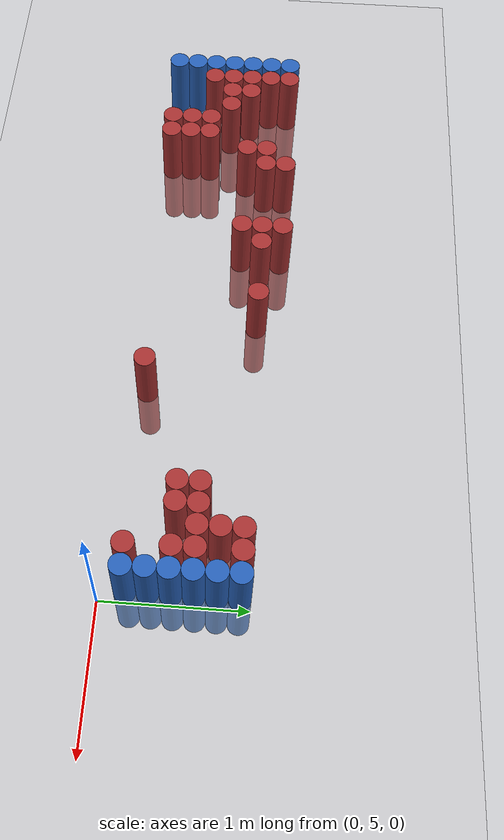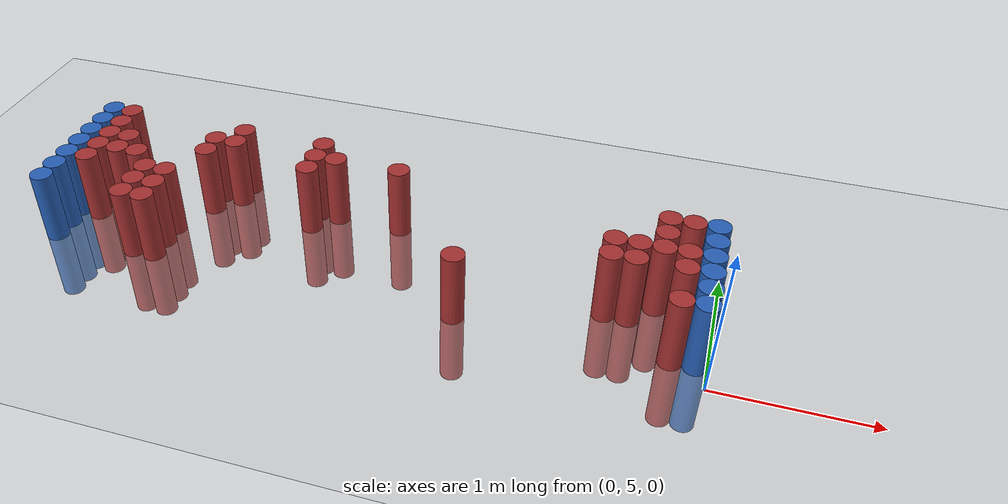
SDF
<sdf version="1.6">
 <world name="default">
  <model name="ground_plane">
   <static>1</static>
   <link name="link">
    <collision name="collision">
     <geometry><plane><normal>0 0 1</normal><size>100 100</size></plane></geometry>
     <surface><friction><ode><mu>100</mu><mu2>50</mu2></ode></friction></surface>
    </collision>
    <visual name="visual">
     <cast_shadows>0</cast_shadows>
     <geometry><plane><normal>0 0 1</normal><size>100 100</size></plane></geometry>
     <material>
      <script><uri>file://media/materials/scripts/gazebo.material</uri><name>Gazebo/Grey</name></script>
     </material>
    </visual>
   </link>
  </model>
  <model name="unit_cylinder_96">
   <static>1</static>
   <pose>-4.425000 5.175000 0.000000 0.000000 0.000000 0.000000</pose>
   <link name="link">
    <inertial>
     <mass>1</mass>
     <inertia><ixx>0.145833</ixx><ixy>0</ixy><ixz>0</ixz><iyy>0.145833</iyy><iyz>0</iyz><izz>0.125</izz></inertia>
    </inertial>
    <collision name="collision">
     <geometry><cylinder><radius>0.075000</radius><length>1</length></cylinder></geometry>
    </collision>
    <visual name="visual">
     <geometry><cylinder><radius>0.075000</radius><length>1</length></cylinder></geometry>
     <material>
      <ambient>0.152000 0.379000 0.720000 1</ambient>
      <diffuse>0.152000 0.379000 0.720000 1</diffuse>
     </material>
     <material>
      <script><name>Gazebo/Grey</name><uri>file://media/materials/scripts/gazebo.material</uri></script>
     </material>
    </visual>
   </link>
  </model>
  <model name="unit_cylinder_97">
   <static>1</static>
   <pose>-4.425000 5.325000 0.000000 0.000000 0.000000 0.000000</pose>
   <link name="link">
    <inertial>
     <mass>1</mass>
     <inertia><ixx>0.145833</ixx><ixy>0</ixy><ixz>0</ixz><iyy>0.145833</iyy><iyz>0</iyz><izz>0.125</izz></inertia>
    </inertial>
    <collision name="collision">
     <geometry><cylinder><radius>0.075000</radius><length>1</length></cylinder></geometry>
    </collision>
    <visual name="visual">
     <geometry><cylinder><radius>0.075000</radius><length>1</length></cylinder></geometry>
     <material>
      <ambient>0.152000 0.379000 0.720000 1</ambient>
      <diffuse>0.152000 0.379000 0.720000 1</diffuse>
     </material>
     <material>
      <script><name>Gazebo/Grey</name><uri>file://media/materials/scripts/gazebo.material</uri></script>
     </material>
    </visual>
   </link>
  </model>
  <model name="unit_cylinder_98">
   <static>1</static>
   <pose>-4.425000 5.475000 0.000000 0.000000 0.000000 0.000000</pose>
   <link name="link">
    <inertial>
     <mass>1</mass>
     <inertia><ixx>0.145833</ixx><ixy>0</ixy><ixz>0</ixz><iyy>0.145833</iyy><iyz>0</iyz><izz>0.125</izz></inertia>
    </inertial>
    <collision name="collision">
     <geometry><cylinder><radius>0.075000</radius><length>1</length></cylinder></geometry>
    </collision>
    <visual name="visual">
     <geometry><cylinder><radius>0.075000</radius><length>1</length></cylinder></geometry>
     <material>
      <ambient>0.152000 0.379000 0.720000 1</ambient>
      <diffuse>0.152000 0.379000 0.720000 1</diffuse>
     </material>
     <material>
      <script><name>Gazebo/Grey</name><uri>file://media/materials/scripts/gazebo.material</uri></script>
     </material>
    </visual>
   </link>
  </model>
  <model name="unit_cylinder_99">
   <static>1</static>
   <pose>-4.425000 5.625000 0.000000 0.000000 0.000000 0.000000</pose>
   <link name="link">
    <inertial>
     <mass>1</mass>
     <inertia><ixx>0.145833</ixx><ixy>0</ixy><ixz>0</ixz><iyy>0.145833</iyy><iyz>0</iyz><izz>0.125</izz></inertia>
    </inertial>
    <collision name="collision">
     <geometry><cylinder><radius>0.075000</radius><length>1</length></cylinder></geometry>
    </collision>
    <visual name="visual">
     <geometry><cylinder><radius>0.075000</radius><length>1</length></cylinder></geometry>
     <material>
      <ambient>0.152000 0.379000 0.720000 1</ambient>
      <diffuse>0.152000 0.379000 0.720000 1</diffuse>
     </material>
     <material>
      <script><name>Gazebo/Grey</name><uri>file://media/materials/scripts/gazebo.material</uri></script>
     </material>
    </visual>
   </link>
  </model>
  <model name="unit_cylinder_100">
   <static>1</static>
   <pose>-4.425000 5.775000 0.000000 0.000000 0.000000 0.000000</pose>
   <link name="link">
    <inertial>
     <mass>1</mass>
     <inertia><ixx>0.145833</ixx><ixy>0</ixy><ixz>0</ixz><iyy>0.145833</iyy><iyz>0</iyz><izz>0.125</izz></inertia>
    </inertial>
    <collision name="collision">
     <geometry><cylinder><radius>0.075000</radius><length>1</length></cylinder></geometry>
    </collision>
    <visual name="visual">
     <geometry><cylinder><radius>0.075000</radius><length>1</length></cylinder></geometry>
     <material>
      <ambient>0.152000 0.379000 0.720000 1</ambient>
      <diffuse>0.152000 0.379000 0.720000 1</diffuse>
     </material>
     <material>
      <script><name>Gazebo/Grey</name><uri>file://media/materials/scripts/gazebo.material</uri></script>
     </material>
    </visual>
   </link>
  </model>
  <model name="unit_cylinder_101">
   <static>1</static>
   <pose>-4.425000 5.925000 0.000000 0.000000 0.000000 0.000000</pose>
   <link name="link">
    <inertial>
     <mass>1</mass>
     <inertia><ixx>0.145833</ixx><ixy>0</ixy><ixz>0</ixz><iyy>0.145833</iyy><iyz>0</iyz><izz>0.125</izz></inertia>
    </inertial>
    <collision name="collision">
     <geometry><cylinder><radius>0.075000</radius><length>1</length></cylinder></geometry>
    </collision>
    <visual name="visual">
     <geometry><cylinder><radius>0.075000</radius><length>1</length></cylinder></geometry>
     <material>
      <ambient>0.152000 0.379000 0.720000 1</ambient>
      <diffuse>0.152000 0.379000 0.720000 1</diffuse>
     </material>
     <material>
      <script><name>Gazebo/Grey</name><uri>file://media/materials/scripts/gazebo.material</uri></script>
     </material>
    </visual>
   </link>
  </model>
  <model name="unit_cylinder_102">
   <static>1</static>
   <pose>-4.425000 6.075000 0.000000 0.000000 0.000000 0.000000</pose>
   <link name="link">
    <inertial>
     <mass>1</mass>
     <inertia><ixx>0.145833</ixx><ixy>0</ixy><ixz>0</ixz><iyy>0.145833</iyy><iyz>0</iyz><izz>0.125</izz></inertia>
    </inertial>
    <collision name="collision">
     <geometry><cylinder><radius>0.075000</radius><length>1</length></cylinder></geometry>
    </collision>
    <visual name="visual">
     <geometry><cylinder><radius>0.075000</radius><length>1</length></cylinder></geometry>
     <material>
      <ambient>0.152000 0.379000 0.720000 1</ambient>
      <diffuse>0.152000 0.379000 0.720000 1</diffuse>
     </material>
     <material>
      <script><name>Gazebo/Grey</name><uri>file://media/materials/scripts/gazebo.material</uri></script>
     </material>
    </visual>
   </link>
  </model>
  <model name="unit_cylinder_126">
   <static>1</static>
   <pose>-4.275000 5.475000 0.000000 0.000000 0.000000 0.000000</pose>
   <link name="link">
    <inertial>
     <mass>1</mass>
     <inertia><ixx>0.145833</ixx><ixy>0</ixy><ixz>0</ixz><iyy>0.145833</iyy><iyz>0</iyz><izz>0.125</izz></inertia>
    </inertial>
    <collision name="collision">
     <geometry><cylinder><radius>0.075000</radius><length>1</length></cylinder></geometry>
    </collision>
    <visual name="visual">
     <geometry><cylinder><radius>0.075000</radius><length>1</length></cylinder></geometry>
     <material>
      <ambient>0.648000 0.192000 0.192000 1</ambient>
      <diffuse>0.648000 0.192000 0.192000 1</diffuse>
     </material>
     <material>
      <script><name>Gazebo/Grey</name><uri>file://media/materials/scripts/gazebo.material</uri></script>
     </material>
    </visual>
   </link>
  </model>
  <model name="unit_cylinder_127">
   <static>1</static>
   <pose>-4.275000 5.625000 0.000000 0.000000 0.000000 0.000000</pose>
   <link name="link">
    <inertial>
     <mass>1</mass>
     <inertia><ixx>0.145833</ixx><ixy>0</ixy><ixz>0</ixz><iyy>0.145833</iyy><iyz>0</iyz><izz>0.125</izz></inertia>
    </inertial>
    <collision name="collision">
     <geometry><cylinder><radius>0.075000</radius><length>1</length></cylinder></geometry>
    </collision>
    <visual name="visual">
     <geometry><cylinder><radius>0.075000</radius><length>1</length></cylinder></geometry>
     <material>
      <ambient>0.648000 0.192000 0.192000 1</ambient>
      <diffuse>0.648000 0.192000 0.192000 1</diffuse>
     </material>
     <material>
      <script><name>Gazebo/Grey</name><uri>file://media/materials/scripts/gazebo.material</uri></script>
     </material>
    </visual>
   </link>
  </model>
  <model name="unit_cylinder_128">
   <static>1</static>
   <pose>-4.275000 5.775000 0.000000 0.000000 0.000000 0.000000</pose>
   <link name="link">
    <inertial>
     <mass>1</mass>
     <inertia><ixx>0.145833</ixx><ixy>0</ixy><ixz>0</ixz><iyy>0.145833</iyy><iyz>0</iyz><izz>0.125</izz></inertia>
    </inertial>
    <collision name="collision">
     <geometry><cylinder><radius>0.075000</radius><length>1</length></cylinder></geometry>
    </collision>
    <visual name="visual">
     <geometry><cylinder><radius>0.075000</radius><length>1</length></cylinder></geometry>
     <material>
      <ambient>0.648000 0.192000 0.192000 1</ambient>
      <diffuse>0.648000 0.192000 0.192000 1</diffuse>
     </material>
     <material>
      <script><name>Gazebo/Grey</name><uri>file://media/materials/scripts/gazebo.material</uri></script>
     </material>
    </visual>
   </link>
  </model>
  <model name="unit_cylinder_129">
   <static>1</static>
   <pose>-4.275000 5.925000 0.000000 0.000000 0.000000 0.000000</pose>
   <link name="link">
    <inertial>
     <mass>1</mass>
     <inertia><ixx>0.145833</ixx><ixy>0</ixy><ixz>0</ixz><iyy>0.145833</iyy><iyz>0</iyz><izz>0.125</izz></inertia>
    </inertial>
    <collision name="collision">
     <geometry><cylinder><radius>0.075000</radius><length>1</length></cylinder></geometry>
    </collision>
    <visual name="visual">
     <geometry><cylinder><radius>0.075000</radius><length>1</length></cylinder></geometry>
     <material>
      <ambient>0.648000 0.192000 0.192000 1</ambient>
      <diffuse>0.648000 0.192000 0.192000 1</diffuse>
     </material>
     <material>
      <script><name>Gazebo/Grey</name><uri>file://media/materials/scripts/gazebo.material</uri></script>
     </material>
    </visual>
   </link>
  </model>
  <model name="unit_cylinder_130">
   <static>1</static>
   <pose>-4.275000 6.075000 0.000000 0.000000 0.000000 0.000000</pose>
   <link name="link">
    <inertial>
     <mass>1</mass>
     <inertia><ixx>0.145833</ixx><ixy>0</ixy><ixz>0</ixz><iyy>0.145833</iyy><iyz>0</iyz><izz>0.125</izz></inertia>
    </inertial>
    <collision name="collision">
     <geometry><cylinder><radius>0.075000</radius><length>1</length></cylinder></geometry>
    </collision>
    <visual name="visual">
     <geometry><cylinder><radius>0.075000</radius><length>1</length></cylinder></geometry>
     <material>
      <ambient>0.648000 0.192000 0.192000 1</ambient>
      <diffuse>0.648000 0.192000 0.192000 1</diffuse>
     </material>
     <material>
      <script><name>Gazebo/Grey</name><uri>file://media/materials/scripts/gazebo.material</uri></script>
     </material>
    </visual>
   </link>
  </model>
  <model name="unit_cylinder_146">
   <static>1</static>
   <pose>-4.125000 5.625000 0.000000 0.000000 0.000000 0.000000</pose>
   <link name="link">
    <inertial>
     <mass>1</mass>
     <inertia><ixx>0.145833</ixx><ixy>0</ixy><ixz>0</ixz><iyy>0.145833</iyy><iyz>0</iyz><izz>0.125</izz></inertia>
    </inertial>
    <collision name="collision">
     <geometry><cylinder><radius>0.075000</radius><length>1</length></cylinder></geometry>
    </collision>
    <visual name="visual">
     <geometry><cylinder><radius>0.075000</radius><length>1</length></cylinder></geometry>
     <material>
      <ambient>0.648000 0.192000 0.192000 1</ambient>
      <diffuse>0.648000 0.192000 0.192000 1</diffuse>
     </material>
     <material>
      <script><name>Gazebo/Grey</name><uri>file://media/materials/scripts/gazebo.material</uri></script>
     </material>
    </visual>
   </link>
  </model>
  <model name="unit_cylinder_147">
   <static>1</static>
   <pose>-4.125000 5.775000 0.000000 0.000000 0.000000 0.000000</pose>
   <link name="link">
    <inertial>
     <mass>1</mass>
     <inertia><ixx>0.145833</ixx><ixy>0</ixy><ixz>0</ixz><iyy>0.145833</iyy><iyz>0</iyz><izz>0.125</izz></inertia>
    </inertial>
    <collision name="collision">
     <geometry><cylinder><radius>0.075000</radius><length>1</length></cylinder></geometry>
    </collision>
    <visual name="visual">
     <geometry><cylinder><radius>0.075000</radius><length>1</length></cylinder></geometry>
     <material>
      <ambient>0.648000 0.192000 0.192000 1</ambient>
      <diffuse>0.648000 0.192000 0.192000 1</diffuse>
     </material>
     <material>
      <script><name>Gazebo/Grey</name><uri>file://media/materials/scripts/gazebo.material</uri></script>
     </material>
    </visual>
   </link>
  </model>
  <model name="unit_cylinder_154">
   <static>1</static>
   <pose>-3.975000 5.625000 0.000000 0.000000 0.000000 0.000000</pose>
   <link name="link">
    <inertial>
     <mass>1</mass>
     <inertia><ixx>0.145833</ixx><ixy>0</ixy><ixz>0</ixz><iyy>0.145833</iyy><iyz>0</iyz><izz>0.125</izz></inertia>
    </inertial>
    <collision name="collision">
     <geometry><cylinder><radius>0.075000</radius><length>1</length></cylinder></geometry>
    </collision>
    <visual name="visual">
     <geometry><cylinder><radius>0.075000</radius><length>1</length></cylinder></geometry>
     <material>
      <ambient>0.648000 0.192000 0.192000 1</ambient>
      <diffuse>0.648000 0.192000 0.192000 1</diffuse>
     </material>
     <material>
      <script><name>Gazebo/Grey</name><uri>file://media/materials/scripts/gazebo.material</uri></script>
     </material>
    </visual>
   </link>
  </model>
  <model name="unit_cylinder_155">
   <static>1</static>
   <pose>-3.825000 5.175000 0.000000 0.000000 0.000000 0.000000</pose>
   <link name="link">
    <inertial>
     <mass>1</mass>
     <inertia><ixx>0.145833</ixx><ixy>0</ixy><ixz>0</ixz><iyy>0.145833</iyy><iyz>0</iyz><izz>0.125</izz></inertia>
    </inertial>
    <collision name="collision">
     <geometry><cylinder><radius>0.075000</radius><length>1</length></cylinder></geometry>
    </collision>
    <visual name="visual">
     <geometry><cylinder><radius>0.075000</radius><length>1</length></cylinder></geometry>
     <material>
      <ambient>0.648000 0.192000 0.192000 1</ambient>
      <diffuse>0.648000 0.192000 0.192000 1</diffuse>
     </material>
     <material>
      <script><name>Gazebo/Grey</name><uri>file://media/materials/scripts/gazebo.material</uri></script>
     </material>
    </visual>
   </link>
  </model>
  <model name="unit_cylinder_156">
   <static>1</static>
   <pose>-3.825000 5.325000 0.000000 0.000000 0.000000 0.000000</pose>
   <link name="link">
    <inertial>
     <mass>1</mass>
     <inertia><ixx>0.145833</ixx><ixy>0</ixy><ixz>0</ixz><iyy>0.145833</iyy><iyz>0</iyz><izz>0.125</izz></inertia>
    </inertial>
    <collision name="collision">
     <geometry><cylinder><radius>0.075000</radius><length>1</length></cylinder></geometry>
    </collision>
    <visual name="visual">
     <geometry><cylinder><radius>0.075000</radius><length>1</length></cylinder></geometry>
     <material>
      <ambient>0.648000 0.192000 0.192000 1</ambient>
      <diffuse>0.648000 0.192000 0.192000 1</diffuse>
     </material>
     <material>
      <script><name>Gazebo/Grey</name><uri>file://media/materials/scripts/gazebo.material</uri></script>
     </material>
    </visual>
   </link>
  </model>
  <model name="unit_cylinder_157">
   <static>1</static>
   <pose>-3.825000 5.475000 0.000000 0.000000 0.000000 0.000000</pose>
   <link name="link">
    <inertial>
     <mass>1</mass>
     <inertia><ixx>0.145833</ixx><ixy>0</ixy><ixz>0</ixz><iyy>0.145833</iyy><iyz>0</iyz><izz>0.125</izz></inertia>
    </inertial>
    <collision name="collision">
     <geometry><cylinder><radius>0.075000</radius><length>1</length></cylinder></geometry>
    </collision>
    <visual name="visual">
     <geometry><cylinder><radius>0.075000</radius><length>1</length></cylinder></geometry>
     <material>
      <ambient>0.648000 0.192000 0.192000 1</ambient>
      <diffuse>0.648000 0.192000 0.192000 1</diffuse>
     </material>
     <material>
      <script><name>Gazebo/Grey</name><uri>file://media/materials/scripts/gazebo.material</uri></script>
     </material>
    </visual>
   </link>
  </model>
  <model name="unit_cylinder_158">
   <static>1</static>
   <pose>-3.675000 5.175000 0.000000 0.000000 0.000000 0.000000</pose>
   <link name="link">
    <inertial>
     <mass>1</mass>
     <inertia><ixx>0.145833</ixx><ixy>0</ixy><ixz>0</ixz><iyy>0.145833</iyy><iyz>0</iyz><izz>0.125</izz></inertia>
    </inertial>
    <collision name="collision">
     <geometry><cylinder><radius>0.075000</radius><length>1</length></cylinder></geometry>
    </collision>
    <visual name="visual">
     <geometry><cylinder><radius>0.075000</radius><length>1</length></cylinder></geometry>
     <material>
      <ambient>0.648000 0.192000 0.192000 1</ambient>
      <diffuse>0.648000 0.192000 0.192000 1</diffuse>
     </material>
     <material>
      <script><name>Gazebo/Grey</name><uri>file://media/materials/scripts/gazebo.material</uri></script>
     </material>
    </visual>
   </link>
  </model>
  <model name="unit_cylinder_159">
   <static>1</static>
   <pose>-3.675000 5.325000 0.000000 0.000000 0.000000 0.000000</pose>
   <link name="link">
    <inertial>
     <mass>1</mass>
     <inertia><ixx>0.145833</ixx><ixy>0</ixy><ixz>0</ixz><iyy>0.145833</iyy><iyz>0</iyz><izz>0.125</izz></inertia>
    </inertial>
    <collision name="collision">
     <geometry><cylinder><radius>0.075000</radius><length>1</length></cylinder></geometry>
    </collision>
    <visual name="visual">
     <geometry><cylinder><radius>0.075000</radius><length>1</length></cylinder></geometry>
     <material>
      <ambient>0.648000 0.192000 0.192000 1</ambient>
      <diffuse>0.648000 0.192000 0.192000 1</diffuse>
     </material>
     <material>
      <script><name>Gazebo/Grey</name><uri>file://media/materials/scripts/gazebo.material</uri></script>
     </material>
    </visual>
   </link>
  </model>
  <model name="unit_cylinder_160">
   <static>1</static>
   <pose>-3.675000 5.475000 0.000000 0.000000 0.000000 0.000000</pose>
   <link name="link">
    <inertial>
     <mass>1</mass>
     <inertia><ixx>0.145833</ixx><ixy>0</ixy><ixz>0</ixz><iyy>0.145833</iyy><iyz>0</iyz><izz>0.125</izz></inertia>
    </inertial>
    <collision name="collision">
     <geometry><cylinder><radius>0.075000</radius><length>1</length></cylinder></geometry>
    </collision>
    <visual name="visual">
     <geometry><cylinder><radius>0.075000</radius><length>1</length></cylinder></geometry>
     <material>
      <ambient>0.648000 0.192000 0.192000 1</ambient>
      <diffuse>0.648000 0.192000 0.192000 1</diffuse>
     </material>
     <material>
      <script><name>Gazebo/Grey</name><uri>file://media/materials/scripts/gazebo.material</uri></script>
     </material>
    </visual>
   </link>
  </model>
  <model name="unit_cylinder_161">
   <static>1</static>
   <pose>-3.525000 5.775000 0.000000 0.000000 0.000000 0.000000</pose>
   <link name="link">
    <inertial>
     <mass>1</mass>
     <inertia><ixx>0.145833</ixx><ixy>0</ixy><ixz>0</ixz><iyy>0.145833</iyy><iyz>0</iyz><izz>0.125</izz></inertia>
    </inertial>
    <collision name="collision">
     <geometry><cylinder><radius>0.075000</radius><length>1</length></cylinder></geometry>
    </collision>
    <visual name="visual">
     <geometry><cylinder><radius>0.075000</radius><length>1</length></cylinder></geometry>
     <material>
      <ambient>0.648000 0.192000 0.192000 1</ambient>
      <diffuse>0.648000 0.192000 0.192000 1</diffuse>
     </material>
     <material>
      <script><name>Gazebo/Grey</name><uri>file://media/materials/scripts/gazebo.material</uri></script>
     </material>
    </visual>
   </link>
  </model>
  <model name="unit_cylinder_162">
   <static>1</static>
   <pose>-3.525000 5.925000 0.000000 0.000000 0.000000 0.000000</pose>
   <link name="link">
    <inertial>
     <mass>1</mass>
     <inertia><ixx>0.145833</ixx><ixy>0</ixy><ixz>0</ixz><iyy>0.145833</iyy><iyz>0</iyz><izz>0.125</izz></inertia>
    </inertial>
    <collision name="collision">
     <geometry><cylinder><radius>0.075000</radius><length>1</length></cylinder></geometry>
    </collision>
    <visual name="visual">
     <geometry><cylinder><radius>0.075000</radius><length>1</length></cylinder></geometry>
     <material>
      <ambient>0.648000 0.192000 0.192000 1</ambient>
      <diffuse>0.648000 0.192000 0.192000 1</diffuse>
     </material>
     <material>
      <script><name>Gazebo/Grey</name><uri>file://media/materials/scripts/gazebo.material</uri></script>
     </material>
    </visual>
   </link>
  </model>
  <model name="unit_cylinder_163">
   <static>1</static>
   <pose>-3.375000 5.925000 0.000000 0.000000 0.000000 0.000000</pose>
   <link name="link">
    <inertial>
     <mass>1</mass>
     <inertia><ixx>0.145833</ixx><ixy>0</ixy><ixz>0</ixz><iyy>0.145833</iyy><iyz>0</iyz><izz>0.125</izz></inertia>
    </inertial>
    <collision name="collision">
     <geometry><cylinder><radius>0.075000</radius><length>1</length></cylinder></geometry>
    </collision>
    <visual name="visual">
     <geometry><cylinder><radius>0.075000</radius><length>1</length></cylinder></geometry>
     <material>
      <ambient>0.648000 0.192000 0.192000 1</ambient>
      <diffuse>0.648000 0.192000 0.192000 1</diffuse>
     </material>
     <material>
      <script><name>Gazebo/Grey</name><uri>file://media/materials/scripts/gazebo.material</uri></script>
     </material>
    </visual>
   </link>
  </model>
  <model name="unit_cylinder_164">
   <static>1</static>
   <pose>-3.375000 6.075000 0.000000 0.000000 0.000000 0.000000</pose>
   <link name="link">
    <inertial>
     <mass>1</mass>
     <inertia><ixx>0.145833</ixx><ixy>0</ixy><ixz>0</ixz><iyy>0.145833</iyy><iyz>0</iyz><izz>0.125</izz></inertia>
    </inertial>
    <collision name="collision">
     <geometry><cylinder><radius>0.075000</radius><length>1</length></cylinder></geometry>
    </collision>
    <visual name="visual">
     <geometry><cylinder><radius>0.075000</radius><length>1</length></cylinder></geometry>
     <material>
      <ambient>0.648000 0.192000 0.192000 1</ambient>
      <diffuse>0.648000 0.192000 0.192000 1</diffuse>
     </material>
     <material>
      <script><name>Gazebo/Grey</name><uri>file://media/materials/scripts/gazebo.material</uri></script>
     </material>
    </visual>
   </link>
  </model>
  <model name="unit_cylinder_170">
   <static>1</static>
   <pose>-2.775000 5.775000 0.000000 0.000000 0.000000 0.000000</pose>
   <link name="link">
    <inertial>
     <mass>1</mass>
     <inertia><ixx>0.145833</ixx><ixy>0</ixy><ixz>0</ixz><iyy>0.145833</iyy><iyz>0</iyz><izz>0.125</izz></inertia>
    </inertial>
    <collision name="collision">
     <geometry><cylinder><radius>0.075000</radius><length>1</length></cylinder></geometry>
    </collision>
    <visual name="visual">
     <geometry><cylinder><radius>0.075000</radius><length>1</length></cylinder></geometry>
     <material>
      <ambient>0.648000 0.192000 0.192000 1</ambient>
      <diffuse>0.648000 0.192000 0.192000 1</diffuse>
     </material>
     <material>
      <script><name>Gazebo/Grey</name><uri>file://media/materials/scripts/gazebo.material</uri></script>
     </material>
    </visual>
   </link>
  </model>
  <model name="unit_cylinder_171">
   <static>1</static>
   <pose>-2.775000 5.925000 0.000000 0.000000 0.000000 0.000000</pose>
   <link name="link">
    <inertial>
     <mass>1</mass>
     <inertia><ixx>0.145833</ixx><ixy>0</ixy><ixz>0</ixz><iyy>0.145833</iyy><iyz>0</iyz><izz>0.125</izz></inertia>
    </inertial>
    <collision name="collision">
     <geometry><cylinder><radius>0.075000</radius><length>1</length></cylinder></geometry>
    </collision>
    <visual name="visual">
     <geometry><cylinder><radius>0.075000</radius><length>1</length></cylinder></geometry>
     <material>
      <ambient>0.648000 0.192000 0.192000 1</ambient>
      <diffuse>0.648000 0.192000 0.192000 1</diffuse>
     </material>
     <material>
      <script><name>Gazebo/Grey</name><uri>file://media/materials/scripts/gazebo.material</uri></script>
     </material>
    </visual>
   </link>
  </model>
  <model name="unit_cylinder_172">
   <static>1</static>
   <pose>-2.775000 6.075000 0.000000 0.000000 0.000000 0.000000</pose>
   <link name="link">
    <inertial>
     <mass>1</mass>
     <inertia><ixx>0.145833</ixx><ixy>0</ixy><ixz>0</ixz><iyy>0.145833</iyy><iyz>0</iyz><izz>0.125</izz></inertia>
    </inertial>
    <collision name="collision">
     <geometry><cylinder><radius>0.075000</radius><length>1</length></cylinder></geometry>
    </collision>
    <visual name="visual">
     <geometry><cylinder><radius>0.075000</radius><length>1</length></cylinder></geometry>
     <material>
      <ambient>0.648000 0.192000 0.192000 1</ambient>
      <diffuse>0.648000 0.192000 0.192000 1</diffuse>
     </material>
     <material>
      <script><name>Gazebo/Grey</name><uri>file://media/materials/scripts/gazebo.material</uri></script>
     </material>
    </visual>
   </link>
  </model>
  <model name="unit_cylinder_173">
   <static>1</static>
   <pose>-2.625000 5.925000 0.000000 0.000000 0.000000 0.000000</pose>
   <link name="link">
    <inertial>
     <mass>1</mass>
     <inertia><ixx>0.145833</ixx><ixy>0</ixy><ixz>0</ixz><iyy>0.145833</iyy><iyz>0</iyz><izz>0.125</izz></inertia>
    </inertial>
    <collision name="collision">
     <geometry><cylinder><radius>0.075000</radius><length>1</length></cylinder></geometry>
    </collision>
    <visual name="visual">
     <geometry><cylinder><radius>0.075000</radius><length>1</length></cylinder></geometry>
     <material>
      <ambient>0.648000 0.192000 0.192000 1</ambient>
      <diffuse>0.648000 0.192000 0.192000 1</diffuse>
     </material>
     <material>
      <script><name>Gazebo/Grey</name><uri>file://media/materials/scripts/gazebo.material</uri></script>
     </material>
    </visual>
   </link>
  </model>
  <model name="unit_cylinder_182">
   <static>1</static>
   <pose>-2.175000 5.925000 0.000000 0.000000 0.000000 0.000000</pose>
   <link name="link">
    <inertial>
     <mass>1</mass>
     <inertia><ixx>0.145833</ixx><ixy>0</ixy><ixz>0</ixz><iyy>0.145833</iyy><iyz>0</iyz><izz>0.125</izz></inertia>
    </inertial>
    <collision name="collision">
     <geometry><cylinder><radius>0.075000</radius><length>1</length></cylinder></geometry>
    </collision>
    <visual name="visual">
     <geometry><cylinder><radius>0.075000</radius><length>1</length></cylinder></geometry>
     <material>
      <ambient>0.648000 0.192000 0.192000 1</ambient>
      <diffuse>0.648000 0.192000 0.192000 1</diffuse>
     </material>
     <material>
      <script><name>Gazebo/Grey</name><uri>file://media/materials/scripts/gazebo.material</uri></script>
     </material>
    </visual>
   </link>
  </model>
  <model name="unit_cylinder_199">
   <static>1</static>
   <pose>-1.575000 5.175000 0.000000 0.000000 0.000000 0.000000</pose>
   <link name="link">
    <inertial>
     <mass>1</mass>
     <inertia><ixx>0.145833</ixx><ixy>0</ixy><ixz>0</ixz><iyy>0.145833</iyy><iyz>0</iyz><izz>0.125</izz></inertia>
    </inertial>
    <collision name="collision">
     <geometry><cylinder><radius>0.075000</radius><length>1</length></cylinder></geometry>
    </collision>
    <visual name="visual">
     <geometry><cylinder><radius>0.075000</radius><length>1</length></cylinder></geometry>
     <material>
      <ambient>0.648000 0.192000 0.192000 1</ambient>
      <diffuse>0.648000 0.192000 0.192000 1</diffuse>
     </material>
     <material>
      <script><name>Gazebo/Grey</name><uri>file://media/materials/scripts/gazebo.material</uri></script>
     </material>
    </visual>
   </link>
  </model>
  <model name="unit_cylinder_221">
   <static>1</static>
   <pose>-0.675000 5.475000 0.000000 0.000000 0.000000 0.000000</pose>
   <link name="link">
    <inertial>
     <mass>1</mass>
     <inertia><ixx>0.145833</ixx><ixy>0</ixy><ixz>0</ixz><iyy>0.145833</iyy><iyz>0</iyz><izz>0.125</izz></inertia>
    </inertial>
    <collision name="collision">
     <geometry><cylinder><radius>0.075000</radius><length>1</length></cylinder></geometry>
    </collision>
    <visual name="visual">
     <geometry><cylinder><radius>0.075000</radius><length>1</length></cylinder></geometry>
     <material>
      <ambient>0.648000 0.192000 0.192000 1</ambient>
      <diffuse>0.648000 0.192000 0.192000 1</diffuse>
     </material>
     <material>
      <script><name>Gazebo/Grey</name><uri>file://media/materials/scripts/gazebo.material</uri></script>
     </material>
    </visual>
   </link>
  </model>
  <model name="unit_cylinder_222">
   <static>1</static>
   <pose>-0.675000 5.625000 0.000000 0.000000 0.000000 0.000000</pose>
   <link name="link">
    <inertial>
     <mass>1</mass>
     <inertia><ixx>0.145833</ixx><ixy>0</ixy><ixz>0</ixz><iyy>0.145833</iyy><iyz>0</iyz><izz>0.125</izz></inertia>
    </inertial>
    <collision name="collision">
     <geometry><cylinder><radius>0.075000</radius><length>1</length></cylinder></geometry>
    </collision>
    <visual name="visual">
     <geometry><cylinder><radius>0.075000</radius><length>1</length></cylinder></geometry>
     <material>
      <ambient>0.648000 0.192000 0.192000 1</ambient>
      <diffuse>0.648000 0.192000 0.192000 1</diffuse>
     </material>
     <material>
      <script><name>Gazebo/Grey</name><uri>file://media/materials/scripts/gazebo.material</uri></script>
     </material>
    </visual>
   </link>
  </model>
  <model name="unit_cylinder_227">
   <static>1</static>
   <pose>-0.525000 5.475000 0.000000 0.000000 0.000000 0.000000</pose>
   <link name="link">
    <inertial>
     <mass>1</mass>
     <inertia><ixx>0.145833</ixx><ixy>0</ixy><ixz>0</ixz><iyy>0.145833</iyy><iyz>0</iyz><izz>0.125</izz></inertia>
    </inertial>
    <collision name="collision">
     <geometry><cylinder><radius>0.075000</radius><length>1</length></cylinder></geometry>
    </collision>
    <visual name="visual">
     <geometry><cylinder><radius>0.075000</radius><length>1</length></cylinder></geometry>
     <material>
      <ambient>0.648000 0.192000 0.192000 1</ambient>
      <diffuse>0.648000 0.192000 0.192000 1</diffuse>
     </material>
     <material>
      <script><name>Gazebo/Grey</name><uri>file://media/materials/scripts/gazebo.material</uri></script>
     </material>
    </visual>
   </link>
  </model>
  <model name="unit_cylinder_228">
   <static>1</static>
   <pose>-0.525000 5.625000 0.000000 0.000000 0.000000 0.000000</pose>
   <link name="link">
    <inertial>
     <mass>1</mass>
     <inertia><ixx>0.145833</ixx><ixy>0</ixy><ixz>0</ixz><iyy>0.145833</iyy><iyz>0</iyz><izz>0.125</izz></inertia>
    </inertial>
    <collision name="collision">
     <geometry><cylinder><radius>0.075000</radius><length>1</length></cylinder></geometry>
    </collision>
    <visual name="visual">
     <geometry><cylinder><radius>0.075000</radius><length>1</length></cylinder></geometry>
     <material>
      <ambient>0.648000 0.192000 0.192000 1</ambient>
      <diffuse>0.648000 0.192000 0.192000 1</diffuse>
     </material>
     <material>
      <script><name>Gazebo/Grey</name><uri>file://media/materials/scripts/gazebo.material</uri></script>
     </material>
    </visual>
   </link>
  </model>
  <model name="unit_cylinder_234">
   <static>1</static>
   <pose>-0.375000 5.625000 0.000000 0.000000 0.000000 0.000000</pose>
   <link name="link">
    <inertial>
     <mass>1</mass>
     <inertia><ixx>0.145833</ixx><ixy>0</ixy><ixz>0</ixz><iyy>0.145833</iyy><iyz>0</iyz><izz>0.125</izz></inertia>
    </inertial>
    <collision name="collision">
     <geometry><cylinder><radius>0.075000</radius><length>1</length></cylinder></geometry>
    </collision>
    <visual name="visual">
     <geometry><cylinder><radius>0.075000</radius><length>1</length></cylinder></geometry>
     <material>
      <ambient>0.648000 0.192000 0.192000 1</ambient>
      <diffuse>0.648000 0.192000 0.192000 1</diffuse>
     </material>
     <material>
      <script><name>Gazebo/Grey</name><uri>file://media/materials/scripts/gazebo.material</uri></script>
     </material>
    </visual>
   </link>
  </model>
  <model name="unit_cylinder_235">
   <static>1</static>
   <pose>-0.375000 5.775000 0.000000 0.000000 0.000000 0.000000</pose>
   <link name="link">
    <inertial>
     <mass>1</mass>
     <inertia><ixx>0.145833</ixx><ixy>0</ixy><ixz>0</ixz><iyy>0.145833</iyy><iyz>0</iyz><izz>0.125</izz></inertia>
    </inertial>
    <collision name="collision">
     <geometry><cylinder><radius>0.075000</radius><length>1</length></cylinder></geometry>
    </collision>
    <visual name="visual">
     <geometry><cylinder><radius>0.075000</radius><length>1</length></cylinder></geometry>
     <material>
      <ambient>0.648000 0.192000 0.192000 1</ambient>
      <diffuse>0.648000 0.192000 0.192000 1</diffuse>
     </material>
     <material>
      <script><name>Gazebo/Grey</name><uri>file://media/materials/scripts/gazebo.material</uri></script>
     </material>
    </visual>
   </link>
  </model>
  <model name="unit_cylinder_236">
   <static>1</static>
   <pose>-0.375000 5.925000 0.000000 0.000000 0.000000 0.000000</pose>
   <link name="link">
    <inertial>
     <mass>1</mass>
     <inertia><ixx>0.145833</ixx><ixy>0</ixy><ixz>0</ixz><iyy>0.145833</iyy><iyz>0</iyz><izz>0.125</izz></inertia>
    </inertial>
    <collision name="collision">
     <geometry><cylinder><radius>0.075000</radius><length>1</length></cylinder></geometry>
    </collision>
    <visual name="visual">
     <geometry><cylinder><radius>0.075000</radius><length>1</length></cylinder></geometry>
     <material>
      <ambient>0.648000 0.192000 0.192000 1</ambient>
      <diffuse>0.648000 0.192000 0.192000 1</diffuse>
     </material>
     <material>
      <script><name>Gazebo/Grey</name><uri>file://media/materials/scripts/gazebo.material</uri></script>
     </material>
    </visual>
   </link>
  </model>
  <model name="unit_cylinder_243">
   <static>1</static>
   <pose>-0.225000 5.175000 0.000000 0.000000 0.000000 0.000000</pose>
   <link name="link">
    <inertial>
     <mass>1</mass>
     <inertia><ixx>0.145833</ixx><ixy>0</ixy><ixz>0</ixz><iyy>0.145833</iyy><iyz>0</iyz><izz>0.125</izz></inertia>
    </inertial>
    <collision name="collision">
     <geometry><cylinder><radius>0.075000</radius><length>1</length></cylinder></geometry>
    </collision>
    <visual name="visual">
     <geometry><cylinder><radius>0.075000</radius><length>1</length></cylinder></geometry>
     <material>
      <ambient>0.648000 0.192000 0.192000 1</ambient>
      <diffuse>0.648000 0.192000 0.192000 1</diffuse>
     </material>
     <material>
      <script><name>Gazebo/Grey</name><uri>file://media/materials/scripts/gazebo.material</uri></script>
     </material>
    </visual>
   </link>
  </model>
  <model name="unit_cylinder_244">
   <static>1</static>
   <pose>-0.225000 5.475000 0.000000 0.000000 0.000000 0.000000</pose>
   <link name="link">
    <inertial>
     <mass>1</mass>
     <inertia><ixx>0.145833</ixx><ixy>0</ixy><ixz>0</ixz><iyy>0.145833</iyy><iyz>0</iyz><izz>0.125</izz></inertia>
    </inertial>
    <collision name="collision">
     <geometry><cylinder><radius>0.075000</radius><length>1</length></cylinder></geometry>
    </collision>
    <visual name="visual">
     <geometry><cylinder><radius>0.075000</radius><length>1</length></cylinder></geometry>
     <material>
      <ambient>0.648000 0.192000 0.192000 1</ambient>
      <diffuse>0.648000 0.192000 0.192000 1</diffuse>
     </material>
     <material>
      <script><name>Gazebo/Grey</name><uri>file://media/materials/scripts/gazebo.material</uri></script>
     </material>
    </visual>
   </link>
  </model>
  <model name="unit_cylinder_245">
   <static>1</static>
   <pose>-0.225000 5.625000 0.000000 0.000000 0.000000 0.000000</pose>
   <link name="link">
    <inertial>
     <mass>1</mass>
     <inertia><ixx>0.145833</ixx><ixy>0</ixy><ixz>0</ixz><iyy>0.145833</iyy><iyz>0</iyz><izz>0.125</izz></inertia>
    </inertial>
    <collision name="collision">
     <geometry><cylinder><radius>0.075000</radius><length>1</length></cylinder></geometry>
    </collision>
    <visual name="visual">
     <geometry><cylinder><radius>0.075000</radius><length>1</length></cylinder></geometry>
     <material>
      <ambient>0.648000 0.192000 0.192000 1</ambient>
      <diffuse>0.648000 0.192000 0.192000 1</diffuse>
     </material>
     <material>
      <script><name>Gazebo/Grey</name><uri>file://media/materials/scripts/gazebo.material</uri></script>
     </material>
    </visual>
   </link>
  </model>
  <model name="unit_cylinder_246">
   <static>1</static>
   <pose>-0.225000 5.925000 0.000000 0.000000 0.000000 0.000000</pose>
   <link name="link">
    <inertial>
     <mass>1</mass>
     <inertia><ixx>0.145833</ixx><ixy>0</ixy><ixz>0</ixz><iyy>0.145833</iyy><iyz>0</iyz><izz>0.125</izz></inertia>
    </inertial>
    <collision name="collision">
     <geometry><cylinder><radius>0.075000</radius><length>1</length></cylinder></geometry>
    </collision>
    <visual name="visual">
     <geometry><cylinder><radius>0.075000</radius><length>1</length></cylinder></geometry>
     <material>
      <ambient>0.648000 0.192000 0.192000 1</ambient>
      <diffuse>0.648000 0.192000 0.192000 1</diffuse>
     </material>
     <material>
      <script><name>Gazebo/Grey</name><uri>file://media/materials/scripts/gazebo.material</uri></script>
     </material>
    </visual>
   </link>
  </model>
  <model name="unit_cylinder_259">
   <static>1</static>
   <pose>-0.075000 5.175000 0.000000 0.000000 0.000000 0.000000</pose>
   <link name="link">
    <inertial>
     <mass>1</mass>
     <inertia><ixx>0.145833</ixx><ixy>0</ixy><ixz>0</ixz><iyy>0.145833</iyy><iyz>0</iyz><izz>0.125</izz></inertia>
    </inertial>
    <collision name="collision">
     <geometry><cylinder><radius>0.075000</radius><length>1</length></cylinder></geometry>
    </collision>
    <visual name="visual">
     <geometry><cylinder><radius>0.075000</radius><length>1</length></cylinder></geometry>
     <material>
      <ambient>0.152000 0.379000 0.720000 1</ambient>
      <diffuse>0.152000 0.379000 0.720000 1</diffuse>
     </material>
     <material>
      <script><name>Gazebo/Grey</name><uri>file://media/materials/scripts/gazebo.material</uri></script>
     </material>
    </visual>
   </link>
  </model>
  <model name="unit_cylinder_260">
   <static>1</static>
   <pose>-0.075000 5.325000 0.000000 0.000000 0.000000 0.000000</pose>
   <link name="link">
    <inertial>
     <mass>1</mass>
     <inertia><ixx>0.145833</ixx><ixy>0</ixy><ixz>0</ixz><iyy>0.145833</iyy><iyz>0</iyz><izz>0.125</izz></inertia>
    </inertial>
    <collision name="collision">
     <geometry><cylinder><radius>0.075000</radius><length>1</length></cylinder></geometry>
    </collision>
    <visual name="visual">
     <geometry><cylinder><radius>0.075000</radius><length>1</length></cylinder></geometry>
     <material>
      <ambient>0.152000 0.379000 0.720000 1</ambient>
      <diffuse>0.152000 0.379000 0.720000 1</diffuse>
     </material>
     <material>
      <script><name>Gazebo/Grey</name><uri>file://media/materials/scripts/gazebo.material</uri></script>
     </material>
    </visual>
   </link>
  </model>
  <model name="unit_cylinder_261">
   <static>1</static>
   <pose>-0.075000 5.475000 0.000000 0.000000 0.000000 0.000000</pose>
   <link name="link">
    <inertial>
     <mass>1</mass>
     <inertia><ixx>0.145833</ixx><ixy>0</ixy><ixz>0</ixz><iyy>0.145833</iyy><iyz>0</iyz><izz>0.125</izz></inertia>
    </inertial>
    <collision name="collision">
     <geometry><cylinder><radius>0.075000</radius><length>1</length></cylinder></geometry>
    </collision>
    <visual name="visual">
     <geometry><cylinder><radius>0.075000</radius><length>1</length></cylinder></geometry>
     <material>
      <ambient>0.152000 0.379000 0.720000 1</ambient>
      <diffuse>0.152000 0.379000 0.720000 1</diffuse>
     </material>
     <material>
      <script><name>Gazebo/Grey</name><uri>file://media/materials/scripts/gazebo.material</uri></script>
     </material>
    </visual>
   </link>
  </model>
  <model name="unit_cylinder_262">
   <static>1</static>
   <pose>-0.075000 5.625000 0.000000 0.000000 0.000000 0.000000</pose>
   <link name="link">
    <inertial>
     <mass>1</mass>
     <inertia><ixx>0.145833</ixx><ixy>0</ixy><ixz>0</ixz><iyy>0.145833</iyy><iyz>0</iyz><izz>0.125</izz></inertia>
    </inertial>
    <collision name="collision">
     <geometry><cylinder><radius>0.075000</radius><length>1</length></cylinder></geometry>
    </collision>
    <visual name="visual">
     <geometry><cylinder><radius>0.075000</radius><length>1</length></cylinder></geometry>
     <material>
      <ambient>0.152000 0.379000 0.720000 1</ambient>
      <diffuse>0.152000 0.379000 0.720000 1</diffuse>
     </material>
     <material>
      <script><name>Gazebo/Grey</name><uri>file://media/materials/scripts/gazebo.material</uri></script>
     </material>
    </visual>
   </link>
  </model>
  <model name="unit_cylinder_263">
   <static>1</static>
   <pose>-0.075000 5.775000 0.000000 0.000000 0.000000 0.000000</pose>
   <link name="link">
    <inertial>
     <mass>1</mass>
     <inertia><ixx>0.145833</ixx><ixy>0</ixy><ixz>0</ixz><iyy>0.145833</iyy><iyz>0</iyz><izz>0.125</izz></inertia>
    </inertial>
    <collision name="collision">
     <geometry><cylinder><radius>0.075000</radius><length>1</length></cylinder></geometry>
    </collision>
    <visual name="visual">
     <geometry><cylinder><radius>0.075000</radius><length>1</length></cylinder></geometry>
     <material>
      <ambient>0.152000 0.379000 0.720000 1</ambient>
      <diffuse>0.152000 0.379000 0.720000 1</diffuse>
     </material>
     <material>
      <script><name>Gazebo/Grey</name><uri>file://media/materials/scripts/gazebo.material</uri></script>
     </material>
    </visual>
   </link>
  </model>
  <model name="unit_cylinder_264">
   <static>1</static>
   <pose>-0.075000 5.925000 0.000000 0.000000 0.000000 0.000000</pose>
   <link name="link">
    <inertial>
     <mass>1</mass>
     <inertia><ixx>0.145833</ixx><ixy>0</ixy><ixz>0</ixz><iyy>0.145833</iyy><iyz>0</iyz><izz>0.125</izz></inertia>
    </inertial>
    <collision name="collision">
     <geometry><cylinder><radius>0.075000</radius><length>1</length></cylinder></geometry>
    </collision>
    <visual name="visual">
     <geometry><cylinder><radius>0.075000</radius><length>1</length></cylinder></geometry>
     <material>
      <ambient>0.152000 0.379000 0.720000 1</ambient>
      <diffuse>0.152000 0.379000 0.720000 1</diffuse>
     </material>
     <material>
      <script><name>Gazebo/Grey</name><uri>file://media/materials/scripts/gazebo.material</uri></script>
     </material>
    </visual>
   </link>
  </model>
 </world>
</sdf>
